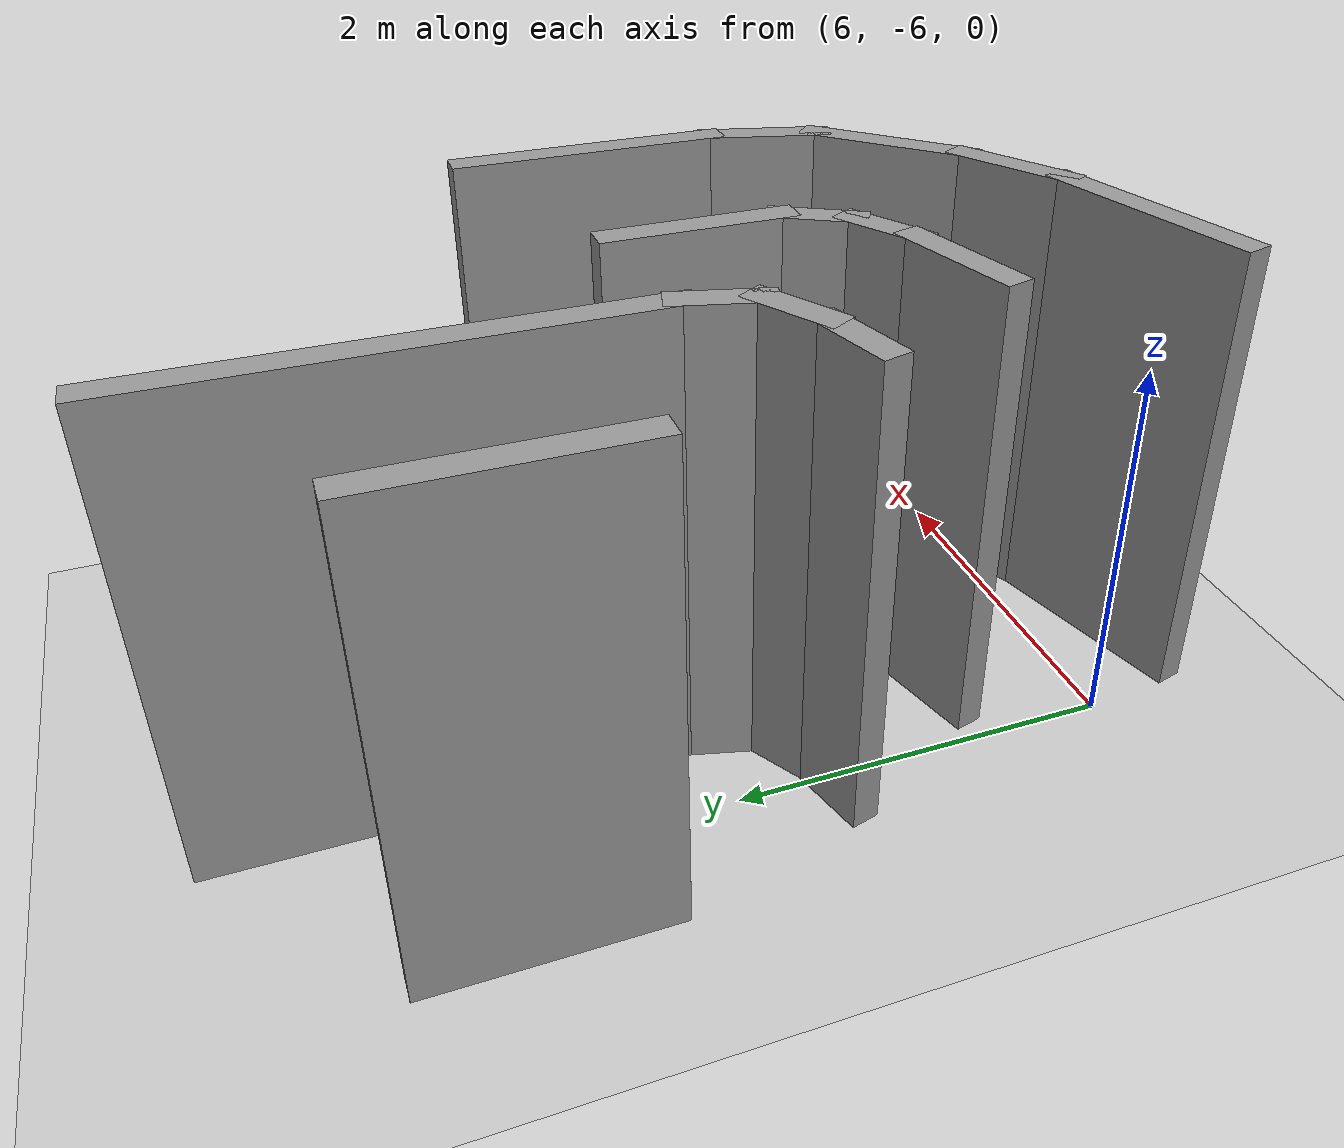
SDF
<sdf version="1.7">
 <world name="default">
  <model name="ground_plane">
   <static>1</static>
   <link name="link">
    <collision name="collision">
     <geometry><plane><normal>0 0 1</normal><size>100 100</size></plane></geometry>
     <surface>
      <contact><collide_bitmask>65535</collide_bitmask></contact>
      <friction><ode><mu>100</mu><mu2>50</mu2></ode></friction>
     </surface>
    </collision>
    <visual name="visual">
     <cast_shadows>0</cast_shadows>
     <geometry><plane><normal>0 0 1</normal><size>100 100</size></plane></geometry>
     <material>
      <script><uri>file://media/materials/scripts/gazebo.material</uri><name>Gazebo/Grey</name></script>
     </material>
    </visual>
   </link>
  </model>
  <model name="Race_Track">
   <link name="Wall_125">
    <pose>5.42125 -3.9557 0 0 -0 0.261799</pose>
    <visual name="Wall_125_Visual">
     <pose>0 0 1.25 0 -0 0</pose>
     <geometry><box><size>0.5 0.15 2.5</size></box></geometry>
     <material>
      <script><uri>file://media/materials/scripts/gazebo.material</uri><name>Gazebo/Grey</name></script>
      <ambient>1 1 1 1</ambient>
      <shader type="pixel"/>
     </material>
     <meta><layer>0</layer></meta>
    </visual>
    <collision name="Wall_125_Collision">
     <pose>0 0 1.25 0 -0 0</pose>
     <geometry><box><size>0.5 0.15 2.5</size></box></geometry>
     <surface>
      <friction>
       <ode><mu>1</mu><mu2>1</mu2><fdir1>0 0 0</fdir1><slip1>0</slip1><slip2>0</slip2></ode>
       <torsional>
        <coefficient>1</coefficient>
        <patch_radius>0</patch_radius>
        <surface_radius>0</surface_radius>
        <use_patch_radius>1</use_patch_radius>
        <ode><slip>0</slip></ode>
       </torsional>
      </friction>
      <bounce><restitution_coefficient>0</restitution_coefficient><threshold>1e+06</threshold></bounce>
      <contact>
       <collide_without_contact>0</collide_without_contact>
       <collide_without_contact_bitmask>1</collide_without_contact_bitmask>
       <collide_bitmask>1</collide_bitmask>
       <ode>
        <soft_cfm>0</soft_cfm>
        <soft_erp>0.2</soft_erp>
        <kp>1e+13</kp>
        <kd>1</kd>
        <max_vel>0.01</max_vel>
        <min_depth>0</min_depth>
       </ode>
       <bullet>
        <split_impulse>1</split_impulse>
        <split_impulse_penetration_threshold>-0.01</split_impulse_penetration_threshold>
        <soft_cfm>0</soft_cfm>
        <soft_erp>0.2</soft_erp>
        <kp>1e+13</kp>
        <kd>1</kd>
       </bullet>
      </contact>
     </surface>
    </collision>
   </link>
   <link name="Wall_126">
    <pose>5.74184 -3.8229 0 0 -0 0.523599</pose>
    <visual name="Wall_126_Visual">
     <pose>0 0 1.25 0 -0 0</pose>
     <geometry><box><size>0.5 0.15 2.5</size></box></geometry>
     <material>
      <script><uri>file://media/materials/scripts/gazebo.material</uri><name>Gazebo/Grey</name></script>
      <ambient>1 1 1 1</ambient>
      <shader type="pixel"/>
     </material>
     <meta><layer>0</layer></meta>
    </visual>
    <collision name="Wall_126_Collision">
     <pose>0 0 1.25 0 -0 0</pose>
     <geometry><box><size>0.5 0.15 2.5</size></box></geometry>
     <surface>
      <friction>
       <ode><mu>1</mu><mu2>1</mu2><fdir1>0 0 0</fdir1><slip1>0</slip1><slip2>0</slip2></ode>
       <torsional>
        <coefficient>1</coefficient>
        <patch_radius>0</patch_radius>
        <surface_radius>0</surface_radius>
        <use_patch_radius>1</use_patch_radius>
        <ode><slip>0</slip></ode>
       </torsional>
      </friction>
      <bounce><restitution_coefficient>0</restitution_coefficient><threshold>1e+06</threshold></bounce>
      <contact>
       <collide_without_contact>0</collide_without_contact>
       <collide_without_contact_bitmask>1</collide_without_contact_bitmask>
       <collide_bitmask>1</collide_bitmask>
       <ode>
        <soft_cfm>0</soft_cfm>
        <soft_erp>0.2</soft_erp>
        <kp>1e+13</kp>
        <kd>1</kd>
        <max_vel>0.01</max_vel>
        <min_depth>0</min_depth>
       </ode>
       <bullet>
        <split_impulse>1</split_impulse>
        <split_impulse_penetration_threshold>-0.01</split_impulse_penetration_threshold>
        <soft_cfm>0</soft_cfm>
        <soft_erp>0.2</soft_erp>
        <kp>1e+13</kp>
        <kd>1</kd>
       </bullet>
      </contact>
     </surface>
    </collision>
   </link>
   <link name="Wall_127">
    <pose>5.93869 -3.56637 0 0 -0 1.309</pose>
    <visual name="Wall_127_Visual">
     <pose>0 0 1.25 0 -0 0</pose>
     <geometry><box><size>0.5 0.15 2.5</size></box></geometry>
     <material>
      <script><uri>file://media/materials/scripts/gazebo.material</uri><name>Gazebo/Grey</name></script>
      <ambient>1 1 1 1</ambient>
      <shader type="pixel"/>
     </material>
     <meta><layer>0</layer></meta>
    </visual>
    <collision name="Wall_127_Collision">
     <pose>0 0 1.25 0 -0 0</pose>
     <geometry><box><size>0.5 0.15 2.5</size></box></geometry>
     <surface>
      <friction>
       <ode><mu>1</mu><mu2>1</mu2><fdir1>0 0 0</fdir1><slip1>0</slip1><slip2>0</slip2></ode>
       <torsional>
        <coefficient>1</coefficient>
        <patch_radius>0</patch_radius>
        <surface_radius>0</surface_radius>
        <use_patch_radius>1</use_patch_radius>
        <ode><slip>0</slip></ode>
       </torsional>
      </friction>
      <bounce><restitution_coefficient>0</restitution_coefficient><threshold>1e+06</threshold></bounce>
      <contact>
       <collide_without_contact>0</collide_without_contact>
       <collide_without_contact_bitmask>1</collide_without_contact_bitmask>
       <collide_bitmask>1</collide_bitmask>
       <ode>
        <soft_cfm>0</soft_cfm>
        <soft_erp>0.2</soft_erp>
        <kp>1e+13</kp>
        <kd>1</kd>
        <max_vel>0.01</max_vel>
        <min_depth>0</min_depth>
       </ode>
       <bullet>
        <split_impulse>1</split_impulse>
        <split_impulse_penetration_threshold>-0.01</split_impulse_penetration_threshold>
        <soft_cfm>0</soft_cfm>
        <soft_erp>0.2</soft_erp>
        <kp>1e+13</kp>
        <kd>1</kd>
       </bullet>
      </contact>
     </surface>
    </collision>
   </link>
   <link name="Wall_128">
    <pose>5.98398 -2.22233 0 0 -0 1.5708</pose>
    <visual name="Wall_128_Visual">
     <pose>0 0 1.25 0 -0 0</pose>
     <geometry><box><size>2.5 0.15 2.5</size></box></geometry>
     <material>
      <script><uri>file://media/materials/scripts/gazebo.material</uri><name>Gazebo/Grey</name></script>
      <ambient>1 1 1 1</ambient>
      <shader type="pixel"/>
     </material>
     <meta><layer>0</layer></meta>
    </visual>
    <collision name="Wall_128_Collision">
     <pose>0 0 1.25 0 -0 0</pose>
     <geometry><box><size>2.5 0.15 2.5</size></box></geometry>
     <surface>
      <friction>
       <ode><mu>1</mu><mu2>1</mu2><fdir1>0 0 0</fdir1><slip1>0</slip1><slip2>0</slip2></ode>
       <torsional>
        <coefficient>1</coefficient>
        <patch_radius>0</patch_radius>
        <surface_radius>0</surface_radius>
        <use_patch_radius>1</use_patch_radius>
        <ode><slip>0</slip></ode>
       </torsional>
      </friction>
      <bounce><restitution_coefficient>0</restitution_coefficient><threshold>1e+06</threshold></bounce>
      <contact>
       <collide_without_contact>0</collide_without_contact>
       <collide_without_contact_bitmask>1</collide_without_contact_bitmask>
       <collide_bitmask>1</collide_bitmask>
       <ode>
        <soft_cfm>0</soft_cfm>
        <soft_erp>0.2</soft_erp>
        <kp>1e+13</kp>
        <kd>1</kd>
        <max_vel>0.01</max_vel>
        <min_depth>0</min_depth>
       </ode>
       <bullet>
        <split_impulse>1</split_impulse>
        <split_impulse_penetration_threshold>-0.01</split_impulse_penetration_threshold>
        <soft_cfm>0</soft_cfm>
        <soft_erp>0.2</soft_erp>
        <kp>1e+13</kp>
        <kd>1</kd>
       </bullet>
      </contact>
     </surface>
    </collision>
   </link>
   <link name="Wall_184">
    <pose>4.98097 -2.41233 0 0 -0 1.5708</pose>
    <visual name="Wall_184_Visual">
     <pose>0 0 1.25 0 -0 0</pose>
     <geometry><box><size>1.25 0.15 2.5</size></box></geometry>
     <material>
      <script><uri>file://media/materials/scripts/gazebo.material</uri><name>Gazebo/Grey</name></script>
      <ambient>1 1 1 1</ambient>
      <shader type="pixel"/>
     </material>
     <meta><layer>0</layer></meta>
    </visual>
    <collision name="Wall_184_Collision">
     <pose>0 0 1.25 0 -0 0</pose>
     <geometry><box><size>1.25 0.15 2.5</size></box></geometry>
     <surface>
      <friction>
       <ode><mu>1</mu><mu2>1</mu2><fdir1>0 0 0</fdir1><slip1>0</slip1><slip2>0</slip2></ode>
       <torsional>
        <coefficient>1</coefficient>
        <patch_radius>0</patch_radius>
        <surface_radius>0</surface_radius>
        <use_patch_radius>1</use_patch_radius>
        <ode><slip>0</slip></ode>
       </torsional>
      </friction>
      <bounce><restitution_coefficient>0</restitution_coefficient><threshold>1e+06</threshold></bounce>
      <contact>
       <collide_without_contact>0</collide_without_contact>
       <collide_without_contact_bitmask>1</collide_without_contact_bitmask>
       <collide_bitmask>1</collide_bitmask>
       <ode>
        <soft_cfm>0</soft_cfm>
        <soft_erp>0.2</soft_erp>
        <kp>1e+13</kp>
        <kd>1</kd>
        <max_vel>0.01</max_vel>
        <min_depth>0</min_depth>
       </ode>
       <bullet>
        <split_impulse>1</split_impulse>
        <split_impulse_penetration_threshold>-0.01</split_impulse_penetration_threshold>
        <soft_cfm>0</soft_cfm>
        <soft_erp>0.2</soft_erp>
        <kp>1e+13</kp>
        <kd>1</kd>
       </bullet>
      </contact>
     </surface>
    </collision>
   </link>
   <link name="Wall_3">
    <pose>6.17083 -5.86561 0 0 -0 0.261799</pose>
    <visual name="Wall_3_Visual">
     <pose>0 0 1.25 0 -0 0</pose>
     <geometry><box><size>1.25 0.15 2.5</size></box></geometry>
     <material>
      <script><uri>file://media/materials/scripts/gazebo.material</uri><name>Gazebo/Grey</name></script>
      <ambient>1 1 1 1</ambient>
      <shader type="pixel"/>
     </material>
     <meta><layer>0</layer></meta>
    </visual>
    <collision name="Wall_3_Collision">
     <pose>0 0 1.25 0 -0 0</pose>
     <geometry><box><size>1.25 0.15 2.5</size></box></geometry>
     <surface>
      <friction>
       <ode><mu>1</mu><mu2>1</mu2><fdir1>0 0 0</fdir1><slip1>0</slip1><slip2>0</slip2></ode>
       <torsional>
        <coefficient>1</coefficient>
        <patch_radius>0</patch_radius>
        <surface_radius>0</surface_radius>
        <use_patch_radius>1</use_patch_radius>
        <ode><slip>0</slip></ode>
       </torsional>
      </friction>
      <bounce><restitution_coefficient>0</restitution_coefficient><threshold>1e+06</threshold></bounce>
      <contact>
       <collide_without_contact>0</collide_without_contact>
       <collide_without_contact_bitmask>1</collide_without_contact_bitmask>
       <collide_bitmask>1</collide_bitmask>
       <ode>
        <soft_cfm>0</soft_cfm>
        <soft_erp>0.2</soft_erp>
        <kp>1e+13</kp>
        <kd>1</kd>
        <max_vel>0.01</max_vel>
        <min_depth>0</min_depth>
       </ode>
       <bullet>
        <split_impulse>1</split_impulse>
        <split_impulse_penetration_threshold>-0.01</split_impulse_penetration_threshold>
        <soft_cfm>0</soft_cfm>
        <soft_erp>0.2</soft_erp>
        <kp>1e+13</kp>
        <kd>1</kd>
       </bullet>
      </contact>
     </surface>
    </collision>
   </link>
   <link name="Wall_4">
    <pose>6.96189 -5.57326 0 0 -0 0.523599</pose>
    <visual name="Wall_4_Visual">
     <pose>0 0 1.25 0 -0 0</pose>
     <geometry><box><size>0.75 0.15 2.5</size></box></geometry>
     <material>
      <script><uri>file://media/materials/scripts/gazebo.material</uri><name>Gazebo/Grey</name></script>
      <ambient>1 1 1 1</ambient>
      <shader type="pixel"/>
     </material>
     <meta><layer>0</layer></meta>
    </visual>
    <collision name="Wall_4_Collision">
     <pose>0 0 1.25 0 -0 0</pose>
     <geometry><box><size>0.75 0.15 2.5</size></box></geometry>
     <surface>
      <friction>
       <ode><mu>1</mu><mu2>1</mu2><fdir1>0 0 0</fdir1><slip1>0</slip1><slip2>0</slip2></ode>
       <torsional>
        <coefficient>1</coefficient>
        <patch_radius>0</patch_radius>
        <surface_radius>0</surface_radius>
        <use_patch_radius>1</use_patch_radius>
        <ode><slip>0</slip></ode>
       </torsional>
      </friction>
      <bounce><restitution_coefficient>0</restitution_coefficient><threshold>1e+06</threshold></bounce>
      <contact>
       <collide_without_contact>0</collide_without_contact>
       <collide_without_contact_bitmask>1</collide_without_contact_bitmask>
       <collide_bitmask>1</collide_bitmask>
       <ode>
        <soft_cfm>0</soft_cfm>
        <soft_erp>0.2</soft_erp>
        <kp>1e+13</kp>
        <kd>1</kd>
        <max_vel>0.01</max_vel>
        <min_depth>0</min_depth>
       </ode>
       <bullet>
        <split_impulse>1</split_impulse>
        <split_impulse_penetration_threshold>-0.01</split_impulse_penetration_threshold>
        <soft_cfm>0</soft_cfm>
        <soft_erp>0.2</soft_erp>
        <kp>1e+13</kp>
        <kd>1</kd>
       </bullet>
      </contact>
     </surface>
    </collision>
   </link>
   <link name="Wall_47">
    <pose>5.9834 -4.72788 0 0 -0 0.261799</pose>
    <visual name="Wall_47_Visual">
     <pose>0 0 1.25 0 -0 0</pose>
     <geometry><box><size>0.75 0.15 2.5</size></box></geometry>
     <material>
      <script><uri>file://media/materials/scripts/gazebo.material</uri><name>Gazebo/Grey</name></script>
      <ambient>1 1 1 1</ambient>
      <shader type="pixel"/>
     </material>
     <meta><layer>0</layer></meta>
    </visual>
    <collision name="Wall_47_Collision">
     <pose>0 0 1.25 0 -0 0</pose>
     <geometry><box><size>0.75 0.15 2.5</size></box></geometry>
     <surface>
      <friction>
       <ode><mu>1</mu><mu2>1</mu2><fdir1>0 0 0</fdir1><slip1>0</slip1><slip2>0</slip2></ode>
       <torsional>
        <coefficient>1</coefficient>
        <patch_radius>0</patch_radius>
        <surface_radius>0</surface_radius>
        <use_patch_radius>1</use_patch_radius>
        <ode><slip>0</slip></ode>
       </torsional>
      </friction>
      <bounce><restitution_coefficient>0</restitution_coefficient><threshold>1e+06</threshold></bounce>
      <contact>
       <collide_without_contact>0</collide_without_contact>
       <collide_without_contact_bitmask>1</collide_without_contact_bitmask>
       <collide_bitmask>1</collide_bitmask>
       <ode>
        <soft_cfm>0</soft_cfm>
        <soft_erp>0.2</soft_erp>
        <kp>1e+13</kp>
        <kd>1</kd>
        <max_vel>0.01</max_vel>
        <min_depth>0</min_depth>
       </ode>
       <bullet>
        <split_impulse>1</split_impulse>
        <split_impulse_penetration_threshold>-0.01</split_impulse_penetration_threshold>
        <soft_cfm>0</soft_cfm>
        <soft_erp>0.2</soft_erp>
        <kp>1e+13</kp>
        <kd>1</kd>
       </bullet>
      </contact>
     </surface>
    </collision>
   </link>
   <link name="Wall_48">
    <pose>6.42473 -4.56274 0 0 -0 0.523599</pose>
    <visual name="Wall_48_Visual">
     <pose>0 0 1.25 0 -0 0</pose>
     <geometry><box><size>0.5 0.15 2.5</size></box></geometry>
     <material>
      <script><uri>file://media/materials/scripts/gazebo.material</uri><name>Gazebo/Grey</name></script>
      <ambient>1 1 1 1</ambient>
      <shader type="pixel"/>
     </material>
     <meta><layer>0</layer></meta>
    </visual>
    <collision name="Wall_48_Collision">
     <pose>0 0 1.25 0 -0 0</pose>
     <geometry><box><size>0.5 0.15 2.5</size></box></geometry>
     <surface>
      <friction>
       <ode><mu>1</mu><mu2>1</mu2><fdir1>0 0 0</fdir1><slip1>0</slip1><slip2>0</slip2></ode>
       <torsional>
        <coefficient>1</coefficient>
        <patch_radius>0</patch_radius>
        <surface_radius>0</surface_radius>
        <use_patch_radius>1</use_patch_radius>
        <ode><slip>0</slip></ode>
       </torsional>
      </friction>
      <bounce><restitution_coefficient>0</restitution_coefficient><threshold>1e+06</threshold></bounce>
      <contact>
       <collide_without_contact>0</collide_without_contact>
       <collide_without_contact_bitmask>1</collide_without_contact_bitmask>
       <collide_bitmask>1</collide_bitmask>
       <ode>
        <soft_cfm>0</soft_cfm>
        <soft_erp>0.2</soft_erp>
        <kp>1e+13</kp>
        <kd>1</kd>
        <max_vel>0.01</max_vel>
        <min_depth>0</min_depth>
       </ode>
       <bullet>
        <split_impulse>1</split_impulse>
        <split_impulse_penetration_threshold>-0.01</split_impulse_penetration_threshold>
        <soft_cfm>0</soft_cfm>
        <soft_erp>0.2</soft_erp>
        <kp>1e+13</kp>
        <kd>1</kd>
       </bullet>
      </contact>
     </surface>
    </collision>
   </link>
   <link name="Wall_49">
    <pose>6.66379 -4.32368 0 0 -0 1.0472</pose>
    <visual name="Wall_49_Visual">
     <pose>0 0 1.25 0 -0 0</pose>
     <geometry><box><size>0.5 0.15 2.5</size></box></geometry>
     <material>
      <script><uri>file://media/materials/scripts/gazebo.material</uri><name>Gazebo/Grey</name></script>
      <ambient>1 1 1 1</ambient>
      <shader type="pixel"/>
     </material>
     <meta><layer>0</layer></meta>
    </visual>
    <collision name="Wall_49_Collision">
     <pose>0 0 1.25 0 -0 0</pose>
     <geometry><box><size>0.5 0.15 2.5</size></box></geometry>
     <surface>
      <friction>
       <ode><mu>1</mu><mu2>1</mu2><fdir1>0 0 0</fdir1><slip1>0</slip1><slip2>0</slip2></ode>
       <torsional>
        <coefficient>1</coefficient>
        <patch_radius>0</patch_radius>
        <surface_radius>0</surface_radius>
        <use_patch_radius>1</use_patch_radius>
        <ode><slip>0</slip></ode>
       </torsional>
      </friction>
      <bounce><restitution_coefficient>0</restitution_coefficient><threshold>1e+06</threshold></bounce>
      <contact>
       <collide_without_contact>0</collide_without_contact>
       <collide_without_contact_bitmask>1</collide_without_contact_bitmask>
       <collide_bitmask>1</collide_bitmask>
       <ode>
        <soft_cfm>0</soft_cfm>
        <soft_erp>0.2</soft_erp>
        <kp>1e+13</kp>
        <kd>1</kd>
        <max_vel>0.01</max_vel>
        <min_depth>0</min_depth>
       </ode>
       <bullet>
        <split_impulse>1</split_impulse>
        <split_impulse_penetration_threshold>-0.01</split_impulse_penetration_threshold>
        <soft_cfm>0</soft_cfm>
        <soft_erp>0.2</soft_erp>
        <kp>1e+13</kp>
        <kd>1</kd>
       </bullet>
      </contact>
     </surface>
    </collision>
   </link>
   <link name="Wall_5">
    <pose>7.52222 -5.12274 0 0 -0 0.785398</pose>
    <visual name="Wall_5_Visual">
     <pose>0 0 1.25 0 -0 0</pose>
     <geometry><box><size>1 0.15 2.5</size></box></geometry>
     <material>
      <script><uri>file://media/materials/scripts/gazebo.material</uri><name>Gazebo/Grey</name></script>
      <ambient>1 1 1 1</ambient>
      <shader type="pixel"/>
     </material>
     <meta><layer>0</layer></meta>
    </visual>
    <collision name="Wall_5_Collision">
     <pose>0 0 1.25 0 -0 0</pose>
     <geometry><box><size>1 0.15 2.5</size></box></geometry>
     <surface>
      <friction>
       <ode><mu>1</mu><mu2>1</mu2><fdir1>0 0 0</fdir1><slip1>0</slip1><slip2>0</slip2></ode>
       <torsional>
        <coefficient>1</coefficient>
        <patch_radius>0</patch_radius>
        <surface_radius>0</surface_radius>
        <use_patch_radius>1</use_patch_radius>
        <ode><slip>0</slip></ode>
       </torsional>
      </friction>
      <bounce><restitution_coefficient>0</restitution_coefficient><threshold>1e+06</threshold></bounce>
      <contact>
       <collide_without_contact>0</collide_without_contact>
       <collide_without_contact_bitmask>1</collide_without_contact_bitmask>
       <collide_bitmask>1</collide_bitmask>
       <ode>
        <soft_cfm>0</soft_cfm>
        <soft_erp>0.2</soft_erp>
        <kp>1e+13</kp>
        <kd>1</kd>
        <max_vel>0.01</max_vel>
        <min_depth>0</min_depth>
       </ode>
       <bullet>
        <split_impulse>1</split_impulse>
        <split_impulse_penetration_threshold>-0.01</split_impulse_penetration_threshold>
        <soft_cfm>0</soft_cfm>
        <soft_erp>0.2</soft_erp>
        <kp>1e+13</kp>
        <kd>1</kd>
       </bullet>
      </contact>
     </surface>
    </collision>
   </link>
   <link name="Wall_50">
    <pose>6.75129 -3.74713 0 0 -0 1.5708</pose>
    <visual name="Wall_50_Visual">
     <pose>0 0 1.25 0 -0 0</pose>
     <geometry><box><size>1 0.15 2.5</size></box></geometry>
     <material>
      <script><uri>file://media/materials/scripts/gazebo.material</uri><name>Gazebo/Grey</name></script>
      <ambient>1 1 1 1</ambient>
      <shader type="pixel"/>
     </material>
     <meta><layer>0</layer></meta>
    </visual>
    <collision name="Wall_50_Collision">
     <pose>0 0 1.25 0 -0 0</pose>
     <geometry><box><size>1 0.15 2.5</size></box></geometry>
     <surface>
      <friction>
       <ode><mu>1</mu><mu2>1</mu2><fdir1>0 0 0</fdir1><slip1>0</slip1><slip2>0</slip2></ode>
       <torsional>
        <coefficient>1</coefficient>
        <patch_radius>0</patch_radius>
        <surface_radius>0</surface_radius>
        <use_patch_radius>1</use_patch_radius>
        <ode><slip>0</slip></ode>
       </torsional>
      </friction>
      <bounce><restitution_coefficient>0</restitution_coefficient><threshold>1e+06</threshold></bounce>
      <contact>
       <collide_without_contact>0</collide_without_contact>
       <collide_without_contact_bitmask>1</collide_without_contact_bitmask>
       <collide_bitmask>1</collide_bitmask>
       <ode>
        <soft_cfm>0</soft_cfm>
        <soft_erp>0.2</soft_erp>
        <kp>1e+13</kp>
        <kd>1</kd>
        <max_vel>0.01</max_vel>
        <min_depth>0</min_depth>
       </ode>
       <bullet>
        <split_impulse>1</split_impulse>
        <split_impulse_penetration_threshold>-0.01</split_impulse_penetration_threshold>
        <soft_cfm>0</soft_cfm>
        <soft_erp>0.2</soft_erp>
        <kp>1e+13</kp>
        <kd>1</kd>
       </bullet>
      </contact>
     </surface>
    </collision>
   </link>
   <link name="Wall_6">
    <pose>7.90039 -4.53244 0 0 -0 1.309</pose>
    <visual name="Wall_6_Visual">
     <pose>0 0 1.25 0 -0 0</pose>
     <geometry><box><size>0.75 0.15 2.5</size></box></geometry>
     <material>
      <script><uri>file://media/materials/scripts/gazebo.material</uri><name>Gazebo/Grey</name></script>
      <ambient>1 1 1 1</ambient>
      <shader type="pixel"/>
     </material>
     <meta><layer>0</layer></meta>
    </visual>
    <collision name="Wall_6_Collision">
     <pose>0 0 1.25 0 -0 0</pose>
     <geometry><box><size>0.75 0.15 2.5</size></box></geometry>
     <surface>
      <friction>
       <ode><mu>1</mu><mu2>1</mu2><fdir1>0 0 0</fdir1><slip1>0</slip1><slip2>0</slip2></ode>
       <torsional>
        <coefficient>1</coefficient>
        <patch_radius>0</patch_radius>
        <surface_radius>0</surface_radius>
        <use_patch_radius>1</use_patch_radius>
        <ode><slip>0</slip></ode>
       </torsional>
      </friction>
      <bounce><restitution_coefficient>0</restitution_coefficient><threshold>1e+06</threshold></bounce>
      <contact>
       <collide_without_contact>0</collide_without_contact>
       <collide_without_contact_bitmask>1</collide_without_contact_bitmask>
       <collide_bitmask>1</collide_bitmask>
       <ode>
        <soft_cfm>0</soft_cfm>
        <soft_erp>0.2</soft_erp>
        <kp>1e+13</kp>
        <kd>1</kd>
        <max_vel>0.01</max_vel>
        <min_depth>0</min_depth>
       </ode>
       <bullet>
        <split_impulse>1</split_impulse>
        <split_impulse_penetration_threshold>-0.01</split_impulse_penetration_threshold>
        <soft_cfm>0</soft_cfm>
        <soft_erp>0.2</soft_erp>
        <kp>1e+13</kp>
        <kd>1</kd>
       </bullet>
      </contact>
     </surface>
    </collision>
   </link>
   <link name="Wall_7">
    <pose>7.97803 -3.56766 0 0 -0 1.5708</pose>
    <visual name="Wall_7_Visual">
     <pose>0 0 1.25 0 -0 0</pose>
     <geometry><box><size>1.5 0.15 2.5</size></box></geometry>
     <material>
      <script><uri>file://media/materials/scripts/gazebo.material</uri><name>Gazebo/Grey</name></script>
      <ambient>1 1 1 1</ambient>
      <shader type="pixel"/>
     </material>
     <meta><layer>0</layer></meta>
    </visual>
    <collision name="Wall_7_Collision">
     <pose>0 0 1.25 0 -0 0</pose>
     <geometry><box><size>1.5 0.15 2.5</size></box></geometry>
     <surface>
      <friction>
       <ode><mu>1</mu><mu2>1</mu2><fdir1>0 0 0</fdir1><slip1>0</slip1><slip2>0</slip2></ode>
       <torsional>
        <coefficient>1</coefficient>
        <patch_radius>0</patch_radius>
        <surface_radius>0</surface_radius>
        <use_patch_radius>1</use_patch_radius>
        <ode><slip>0</slip></ode>
       </torsional>
      </friction>
      <bounce><restitution_coefficient>0</restitution_coefficient><threshold>1e+06</threshold></bounce>
      <contact>
       <collide_without_contact>0</collide_without_contact>
       <collide_without_contact_bitmask>1</collide_without_contact_bitmask>
       <collide_bitmask>1</collide_bitmask>
       <ode>
        <soft_cfm>0</soft_cfm>
        <soft_erp>0.2</soft_erp>
        <kp>1e+13</kp>
        <kd>1</kd>
        <max_vel>0.01</max_vel>
        <min_depth>0</min_depth>
       </ode>
       <bullet>
        <split_impulse>1</split_impulse>
        <split_impulse_penetration_threshold>-0.01</split_impulse_penetration_threshold>
        <soft_cfm>0</soft_cfm>
        <soft_erp>0.2</soft_erp>
        <kp>1e+13</kp>
        <kd>1</kd>
       </bullet>
      </contact>
     </surface>
    </collision>
   </link>
   <model name="fire_hydrant">
    <static>1</static>
    <link name="link">
     <collision name="collision">
      <geometry><mesh><uri>model://fire_hydrant/meshes/fire_hydrant.dae</uri></mesh></geometry>
     </collision>
     <visual name="visual">
      <geometry><mesh><uri>model://fire_hydrant/meshes/fire_hydrant.dae</uri></mesh></geometry>
     </visual>
    </link>
    <pose>7.33669 -2.30001 -0.178331 0 -0 0</pose>
   </model>
   <static>1</static>
   <pose>0.482814 -0.498319 0 0 -0 0</pose>
  </model>
 </world>
</sdf>
